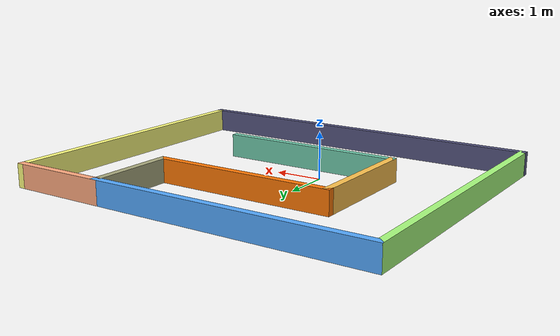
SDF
<?xml version='1.0'?>
<sdf version='1.6'>
  <model name='maze_home'>
    <pose frame=''>0.615 0.545 0 0 -0 0</pose>
    <link name='Wall_0'>
      <collision name='Wall_0_Collision'>
        <geometry>
          <box>
            <size>8 0.15 0.5</size>
          </box>
        </geometry>
        <pose frame=''>0 0 0.25 0 -0 0</pose>
      </collision>
      <visual name='Wall_0_Visual'>
        <pose frame=''>0 0 0.25 0 -0 0</pose>
        <geometry>
          <box>
            <size>8 0.15 0.5</size>
          </box>
        </geometry>
        <material>
          <script>
            <uri>file://media/materials/scripts/gazebo.material</uri>
            <name>Gazebo/Grey</name>
          </script>
          <ambient>0.333333 0.333333 0.498039 1</ambient>
        </material>
      </visual>
      <pose frame=''>0 -3.175 0 0 -0 0</pose>
    </link>
    <link name='Wall_1'>
      <collision name='Wall_1_Collision'>
        <geometry>
          <box>
            <size>6.5 0.15 0.5</size>
          </box>
        </geometry>
        <pose frame=''>0 0 0.25 0 -0 0</pose>
      </collision>
      <visual name='Wall_1_Visual'>
        <pose frame=''>0 0 0.25 0 -0 0</pose>
        <geometry>
          <box>
            <size>6.5 0.15 0.5</size>
          </box>
        </geometry>
        <material>
          <script>
            <uri>file://media/materials/scripts/gazebo.material</uri>
            <name>Gazebo/Grey</name>
          </script>
          <ambient>1 1 0.498039 1</ambient>
        </material>
      </visual>
      <pose frame=''>3.925 0 0 0 -0 1.5708</pose>
    </link>
    <link name='Wall_11'>
      <collision name='Wall_11_Collision'>
        <geometry>
          <box>
            <size>2.15 0.15 0.5</size>
          </box>
        </geometry>
        <pose frame=''>0 0 0.25 0 -0 0</pose>
      </collision>
      <visual name='Wall_11_Visual'>
        <pose frame=''>0 0 0.25 0 -0 0</pose>
        <geometry>
          <box>
            <size>2.15 0.15 0.5</size>
          </box>
        </geometry>
        <material>
          <script>
            <uri>file://media/materials/scripts/gazebo.material</uri>
            <name>Gazebo/Grey</name>
          </script>
          <ambient>1 0.666667 0.498039 1</ambient>
        </material>
      </visual>
      <pose frame=''>2.925 3.175 0 0 -0 3.14159</pose>
    </link>
    <link name='Wall_13'>
      <collision name='Wall_13_Collision'>
        <geometry>
          <box>
            <size>2 0.15 0.5</size>
          </box>
        </geometry>
        <pose frame=''>0 0 0.25 0 -0 0</pose>
      </collision>
      <visual name='Wall_13_Visual'>
        <pose frame=''>0 0 0.25 0 -0 0</pose>
        <geometry>
          <box>
            <size>2 0.15 0.5</size>
          </box>
        </geometry>
        <material>
          <script>
            <uri>file://media/materials/scripts/gazebo.material</uri>
            <name>Gazebo/Grey</name>
          </script>
          <ambient>0.666667 0.666667 0.498039 1</ambient>
        </material>
      </visual>
      <pose frame=''>1.925 2.25 0 0 0 -1.5708</pose>
    </link>
    <link name='Wall_14'>
      <collision name='Wall_14_Collision'>
        <geometry>
          <box>
            <size>4 0.15 0.5</size>
          </box>
        </geometry>
        <pose frame=''>0 0 0.25 0 -0 0</pose>
      </collision>
      <visual name='Wall_14_Visual'>
        <pose frame=''>0 0 0.25 0 -0 0</pose>
        <geometry>
          <box>
            <size>4 0.15 0.5</size>
          </box>
        </geometry>
        <material>
          <script>
            <uri>file://media/materials/scripts/gazebo.material</uri>
            <name>Gazebo/Grey</name>
          </script>
          <ambient>0.996078 0.47451 0.0196078 1</ambient>
        </material>
      </visual>
      <pose frame=''>0 1.325 0 0 -0 3.14159</pose>
    </link>
    <link name='Wall_3'>
      <collision name='Wall_3_Collision'>
        <geometry>
          <box>
            <size>2.65 0.15 0.5</size>
          </box>
        </geometry>
        <pose frame=''>0 0 0.25 0 -0 0</pose>
      </collision>
      <visual name='Wall_3_Visual'>
        <pose frame=''>0 0 0.25 0 -0 0</pose>
        <geometry>
          <box>
            <size>2.65 0.15 0.5</size>
          </box>
        </geometry>
        <material>
          <script>
            <uri>file://media/materials/scripts/gazebo.material</uri>
            <name>Gazebo/Grey</name>
          </script>
          <ambient>1 0.764706 0.305882 1</ambient>
        </material>
      </visual>
      <pose frame=''>-1.925 0.075 0 0 0 -1.5708</pose>
    </link>
    <link name='Wall_4'>
      <collision name='Wall_4_Collision'>
        <geometry>
          <box>
            <size>4 0.15 0.5</size>
          </box>
        </geometry>
        <pose frame=''>0 0 0.25 0 -0 0</pose>
      </collision>
      <visual name='Wall_4_Visual'>
        <pose frame=''>0 0 0.25 0 -0 0</pose>
        <geometry>
          <box>
            <size>4 0.15 0.5</size>
          </box>
        </geometry>
        <material>
          <script>
            <uri>file://media/materials/scripts/gazebo.material</uri>
            <name>Gazebo/Grey</name>
          </script>
          <ambient>0.435294 0.796078 0.67451 1</ambient>
        </material>
      </visual>
      <pose frame=''>0 -1.175 0 0 -0 0</pose>
    </link>
    <link name='Wall_6'>
      <collision name='Wall_6_Collision'>
        <geometry>
          <box>
            <size>6.5 0.15 0.5</size>
          </box>
        </geometry>
        <pose frame=''>0 0 0.25 0 -0 0</pose>
      </collision>
      <visual name='Wall_6_Visual'>
        <pose frame=''>0 0 0.25 0 -0 0</pose>
        <geometry>
          <box>
            <size>6.5 0.15 0.5</size>
          </box>
        </geometry>
        <material>
          <script>
            <uri>file://media/materials/scripts/gazebo.material</uri>
            <name>Gazebo/Grey</name>
          </script>
          <ambient>0.666667 1 0.498039 1</ambient>
        </material>
      </visual>
      <pose frame=''>-3.925 0 0 0 -0 1.5708</pose>
    </link>
    <link name='Wall_7'>
      <collision name='Wall_7_Collision'>
        <geometry>
          <box>
            <size>6 0.15 0.5</size>
          </box>
        </geometry>
        <pose frame=''>0 0 0.25 0 -0 0</pose>
      </collision>
      <visual name='Wall_7_Visual'>
        <pose frame=''>0 0 0.25 0 -0 0</pose>
        <geometry>
          <box>
            <size>6 0.15 0.5</size>
          </box>
        </geometry>
        <material>
          <script>
            <uri>file://media/materials/scripts/gazebo.material</uri>
            <name>Gazebo/Grey</name>
          </script>
          <ambient>0.333333 0.666667 1 1</ambient>
        </material>
      </visual>
      <pose frame=''>-1 3.175 0 0 -0 0</pose>
    </link>
    <static>1</static>
  </model>
</sdf>
